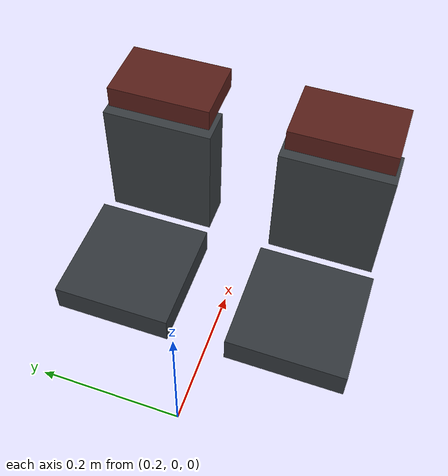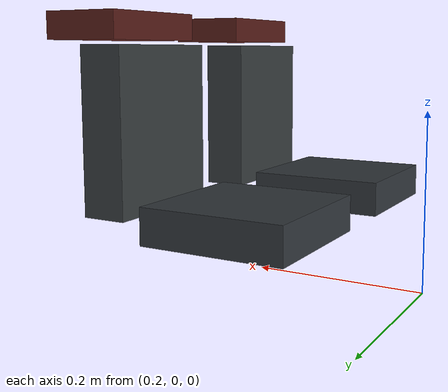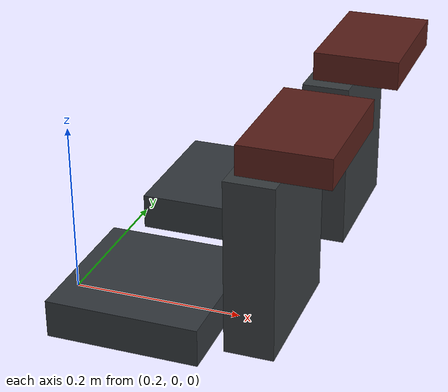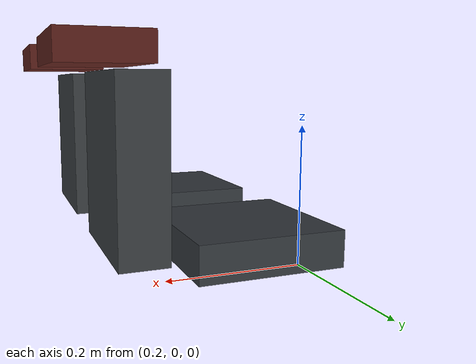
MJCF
<?xml version='1.0' encoding='utf-8'?>
<mujoco model="rudder_pedals">
  <compiler angle="radian" />
  <option timestep="0.002" gravity="0.0 0.0 -9.81" />
  <default>
    <geom friction="0.8 0.01 0.0001" />
  </default>
  <worldbody>
    <light name="rudder_pedals_light" pos="-0.5 -0.5 2" />
    <body name="left_rudder_pedal" pos="0.48 0.12 0.18">
      <joint name="left_rudder_joint" type="slide" axis="1 0 0" range="-0.06 0.06" stiffness="150.0" damping="12.0" frictionloss="1.0" />
      <geom name="left_rudder_plate" type="box" size="0.025 0.075 0.09" mass="0.6" friction="0.7 0.01 0.0001" rgba="0.22 0.24 0.25 1" />
      <body name="left_brake_plate" pos="0 0 0.07">
        <joint name="left_brake_joint" type="hinge" axis="0 1.0 0" range="0.0 0.35" stiffness="8.0" damping="0.8" frictionloss="0.1" />
        <geom name="left_brake_surface" type="box" pos="0.03 0 0.04" size="0.045 0.07 0.015" mass="0.2" friction="0.7 0.01 0.0001" rgba="0.35 0.12 0.10 1" />
      </body>
    </body>
    <body name="left_heel_support" pos="0.35 0.12 0.09">
      <geom name="left_heel_support_geom" type="box" size="0.08 0.08 0.02" friction="0.7 0.01 0.0001" rgba="0.20 0.22 0.24 1" />
    </body>
    <body name="right_rudder_pedal" pos="0.48 -0.12 0.18">
      <joint name="right_rudder_joint" type="slide" axis="1 0 0" range="-0.06 0.06" stiffness="150.0" damping="12.0" frictionloss="1.0" />
      <geom name="right_rudder_plate" type="box" size="0.025 0.075 0.09" mass="0.6" friction="0.7 0.01 0.0001" rgba="0.22 0.24 0.25 1" />
      <body name="right_brake_plate" pos="0 0 0.07">
        <joint name="right_brake_joint" type="hinge" axis="0 -1.0 0" range="0.0 0.35" stiffness="8.0" damping="0.8" frictionloss="0.1" />
        <geom name="right_brake_surface" type="box" pos="0.03 0 0.04" size="0.045 0.07 0.015" mass="0.2" friction="0.7 0.01 0.0001" rgba="0.35 0.12 0.10 1" />
      </body>
    </body>
    <body name="right_heel_support" pos="0.35 -0.12 0.09">
      <geom name="right_heel_support_geom" type="box" size="0.08 0.08 0.02" friction="0.7 0.01 0.0001" rgba="0.20 0.22 0.24 1" />
    </body>
  </worldbody>
  <equality>
    <joint name="rudder_opposed_coupling" joint1="right_rudder_joint" joint2="left_rudder_joint" polycoef="0 -1 0 0 0" />
  </equality>
  <sensor>
    <jointpos name="left_rudder_position" joint="left_rudder_joint" />
    <jointvel name="left_rudder_velocity" joint="left_rudder_joint" />
    <jointpos name="left_brake_position" joint="left_brake_joint" />
    <jointvel name="left_brake_velocity" joint="left_brake_joint" />
    <jointpos name="right_rudder_position" joint="right_rudder_joint" />
    <jointvel name="right_rudder_velocity" joint="right_rudder_joint" />
    <jointpos name="right_brake_position" joint="right_brake_joint" />
    <jointvel name="right_brake_velocity" joint="right_brake_joint" />
  </sensor>
</mujoco>
